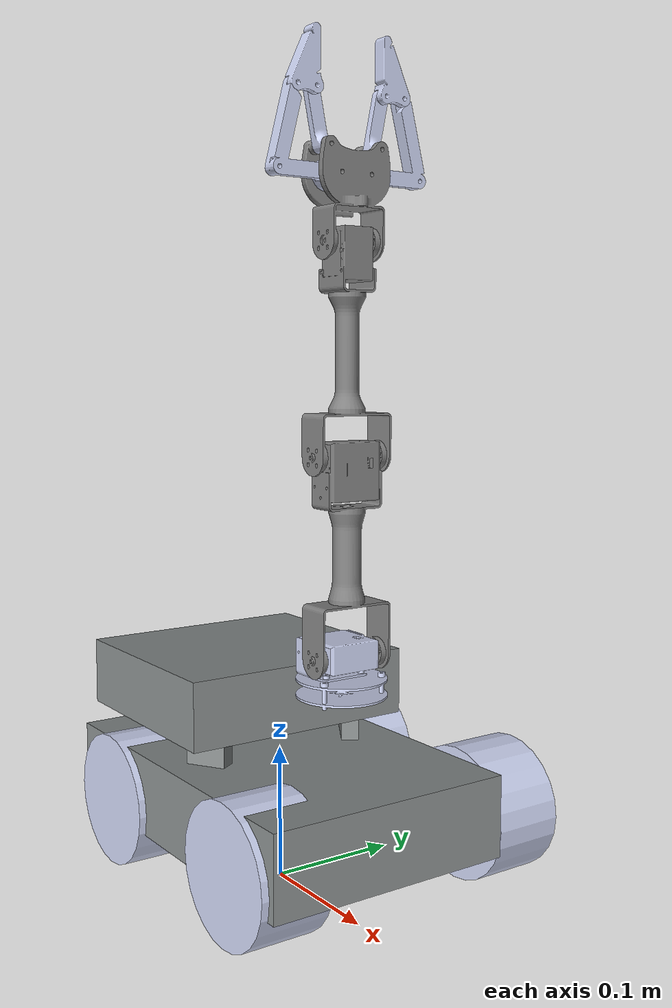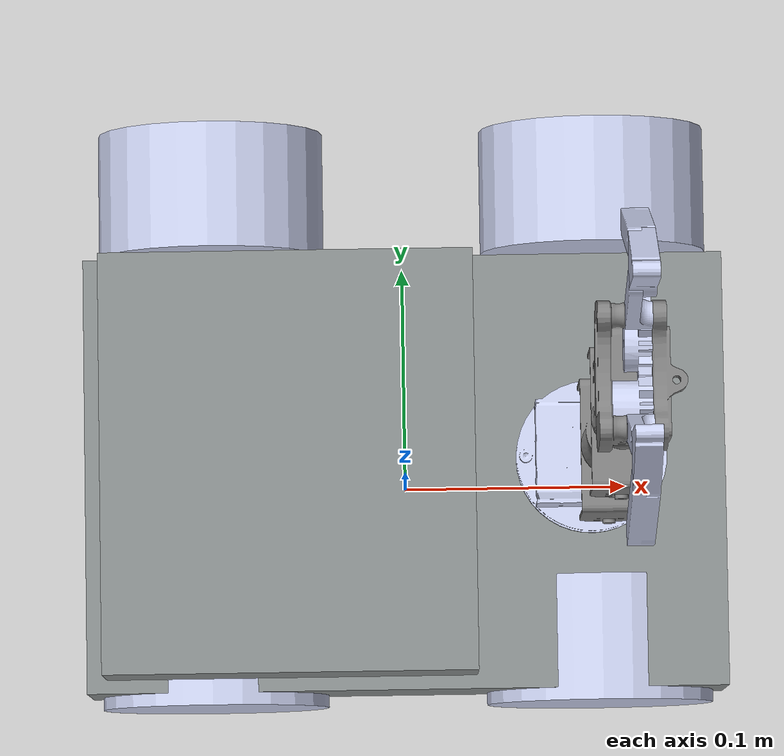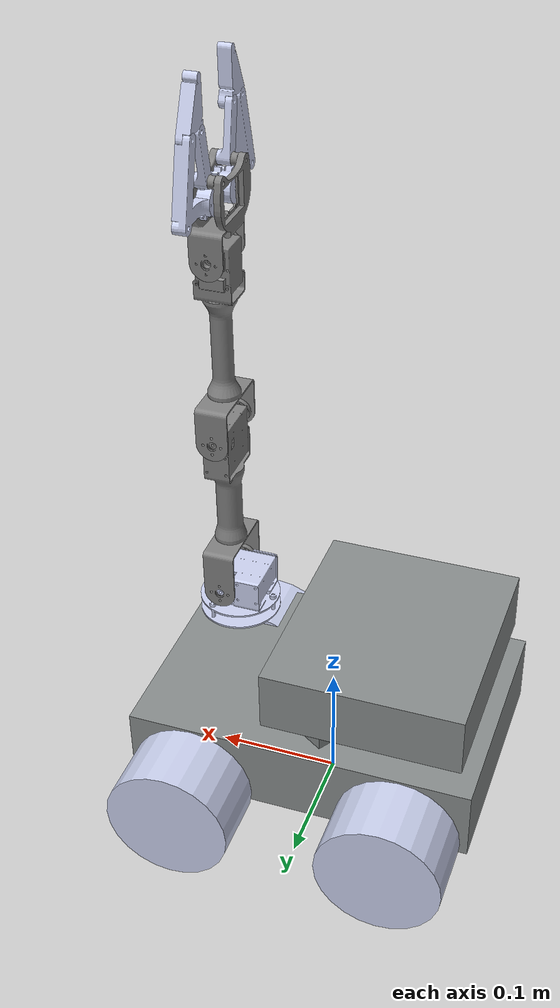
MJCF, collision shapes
<mujoco model="mirte_master">
  <compiler angle="radian" meshdir="./"/>

  <asset>
    <mesh name="frame_link" content_type="model/stl" file="meshes/frame_link.STL"/>
    <mesh name="wheel_left" content_type="model/stl" file="meshes/wheel_left.STL"/>
    <mesh name="wheel_right" content_type="model/stl" file="meshes/wheel_right.STL"/>
    <mesh name="arm_Rot" content_type="model/stl" file="meshes/arm_Rot.STL"/>
    <mesh name="arm_Shoulder" content_type="model/stl" file="meshes/arm_Shoulder.STL"/>
    <mesh name="arm_Elbow" content_type="model/stl" file="meshes/arm_Elbow.STL"/>
    <mesh name="arm_Wrist" content_type="model/stl" file="meshes/arm_Wrist.STL"/>
    <mesh name="Gripper" content_type="model/stl" file="meshes/Gripper.STL"/>
    <mesh name="_gripper_link_r" content_type="model/stl" file="meshes/_gripper_link_r.STL"/>
    <mesh name="gripper_finger_r" content_type="model/stl" file="meshes/gripper_finger_r.STL"/>
    <mesh name="_gripper_link_l" content_type="model/stl" file="meshes/_gripper_link_l.STL"/>
    <mesh name="gripper_finger_l" content_type="model/stl" file="meshes/gripper_finger_l.STL"/>
    <mesh name="_Gripper_r" content_type="model/stl" file="meshes/_Gripper_r.STL"/>
  </asset>

  <worldbody>
    <body name="base_link">
      <body name="frame_link" pos="0 0 0.1" quat="0.707107 0 0 0.707107">
        <inertial pos="-0.00024285 0.0082178 -0.0437661" quat="0.5 0.5 -0.5 0.5" mass="5" diaginertia="0.0477083 0.0341667 0.0165417"/>
        <geom type="mesh" contype="0" conaffinity="0" group="1" density="0" rgba="0.52941 0.54902 0.54902 1" mesh="frame_link"/>
        <geom size="0.095 0.14 0.03" pos="0 0 -0.03" type="box" rgba="0.52941 0.54902 0.54902 1"/>
        <geom size="0.09 0.08 0.025" pos="0 0.05 0.045" type="box" rgba="0.52941 0.54902 0.54902 1"/>
        <geom size="0.0065 0.015 0.0125" pos="-0.062156 -0.002558 0.0125" quat="0.96005 0 0 0.279829" type="box" rgba="0.52941 0.54902 0.54902 1"/>
        <geom size="0.0065 0.02 0.0125" pos="0.064835 0.001664 0.0125" quat="0.96005 0 0 -0.279829" type="box" rgba="0.52941 0.54902 0.54902 1"/>
        <body name="front_left_wheel" pos="0.153 -0.085 -0.0455" quat="0.499998 0.5 -0.500002 -0.5">
          <inertial pos="0 0 0.025" quat="0.5 0.5 -0.5 0.5" mass="2.15" diaginertia="0.0026875 0.00188573 0.00188573"/>
          <joint name="front_left_wheel_joint" pos="0 0 0" axis="0 0 -1"/>
          <geom type="mesh" contype="0" conaffinity="0" group="1" density="0" rgba="0.79216 0.81961 0.93333 1" mesh="wheel_left"/>
          <geom size="0.05 0.0275" pos="0 0 0.025" type="cylinder" rgba="0.79216 0.81961 0.93333 1"/>
        </body>
        <body name="rear_left_wheel" pos="0.153 0.085 -0.0455" quat="0.499998 0.5 -0.500002 -0.5">
          <inertial pos="0 0 0.025" quat="0.5 0.5 -0.5 0.5" mass="2.15" diaginertia="0.0026875 0.00188573 0.00188573"/>
          <joint name="rear_left_wheel_joint" pos="0 0 0" axis="0 0 -1"/>
          <geom type="mesh" contype="0" conaffinity="0" group="1" density="0" rgba="0.79216 0.81961 0.93333 1" mesh="wheel_right"/>
          <geom size="0.05 0.0275" pos="0 0 0.025" type="cylinder" rgba="0.79216 0.81961 0.93333 1"/>
        </body>
        <body name="front_right_wheel" pos="-0.098 -0.085 -0.0455" quat="0.499998 0.5 -0.500002 -0.5">
          <inertial pos="0 0 -0.025" quat="0.5 0.5 -0.5 0.5" mass="2.15" diaginertia="0.0026875 0.00188573 0.00188573"/>
          <joint name="front_right_wheel_joint" pos="0 0 0" axis="0 0 -1"/>
          <geom type="mesh" contype="0" conaffinity="0" group="1" density="0" rgba="0.79216 0.81961 0.93333 1" mesh="wheel_right"/>
          <geom size="0.05 0.0275" pos="0 0 -0.025" type="cylinder" rgba="0.79216 0.81961 0.93333 1"/>
        </body>
        <body name="rear_right_wheel" pos="-0.098 0.085 -0.0455" quat="0.499998 0.5 -0.500002 -0.5">
          <inertial pos="0 0 -0.025" quat="0.5 0.5 -0.5 0.5" mass="2.15" diaginertia="0.0026875 0.00188573 0.00188573"/>
          <joint name="rear_right_wheel_joint" pos="0 0 0" axis="0 0 -1"/>
          <geom type="mesh" contype="0" conaffinity="0" group="1" density="0" rgba="0.79216 0.81961 0.93333 1" mesh="wheel_left"/>
          <geom size="0.05 0.0275" pos="0 0 -0.025" type="cylinder" rgba="0.79216 0.81961 0.93333 1"/>
        </body>
        <body name="shoulder_pan" pos="0 -0.079274 0.06" quat="-2.59734e-06 -2.59735e-06 0.707108 0.707105">
          <inertial pos="-1.27894e-05 0.0208059 0.0058568" quat="0.518277 0.480617 0.518615 0.481076" mass="0.0689676" diaginertia="2.2479e-05 1.69943e-05 1.10737e-05"/>
          <joint name="shoulder_pan_joint" pos="0 0 0" axis="0 1 0" range="-1.5708 1.5708" actuatorfrcrange="-2 2"/>
          <geom type="mesh" contype="0" conaffinity="0" group="1" density="0" rgba="0.792157 0.819608 0.933333 1" mesh="arm_Rot"/>
          <geom type="mesh" rgba="0.792157 0.819608 0.933333 1" mesh="arm_Rot"/>
          <body name="shoulder_lift" pos="0 0.0281 -0.00625" quat="-2.59734e-06 0.707105 0.707108 -2.59735e-06">
            <inertial pos="0.0764974 0.000442681 -4.9369e-09" quat="0.499648 0.500351 -0.499648 0.500351" mass="0.104616" diaginertia="5.51612e-05 3.85678e-05 2.54245e-05"/>
            <joint name="shoulder_lift_joint" pos="0 0 0" axis="0 1 0" range="-1.5708 1.5708" actuatorfrcrange="-2 2"/>
            <geom type="mesh" contype="0" conaffinity="0" group="1" density="0" rgba="0.501961 0.501961 0.501961 1" mesh="arm_Shoulder"/>
            <geom type="mesh" rgba="0.501961 0.501961 0.501961 1" mesh="arm_Shoulder"/>
            <body name="elbow" pos="0.1378 0 0" quat="-2.59734e-06 -0.707105 -0.707108 -2.59735e-06">
              <inertial pos="0.000768648 0.0642295 -2.34836e-08" quat="0.00158822 0.707105 -0.00158822 0.707105" mass="0.0709796" diaginertia="3.79131e-05 2.45688e-05 2.06491e-05"/>
              <joint name="elbow_joint" pos="0 0 0" axis="1 0 0" range="-1.5708 1.5708" actuatorfrcrange="-2 2"/>
              <geom type="mesh" contype="0" conaffinity="0" group="1" density="0" rgba="0.501961 0.501961 0.501961 1" mesh="arm_Elbow"/>
              <geom type="mesh" rgba="0.501961 0.501961 0.501961 1" mesh="arm_Elbow"/>
              <body name="wrist" pos="-0.00014 0.14265 0" quat="-2.59734e-06 0.707105 0.707108 -2.59735e-06">
                <inertial pos="0.0225315 0.000488093 -2.74406e-06" quat="0.499343 0.497027 -0.502794 0.500818" mass="0.0464804" diaginertia="1.75206e-05 1.36227e-05 7.224e-06"/>
                <joint name="wrist_joint" pos="0 0 0" axis="0 1 0" range="-1.5708 1.5708" actuatorfrcrange="-2 2"/>
                <geom type="mesh" contype="0" conaffinity="0" group="1" density="0" rgba="0.501961 0.501961 0.501961 1" mesh="arm_Wrist"/>
                <geom type="mesh" rgba="0.501961 0.501961 0.501961 1" mesh="arm_Wrist"/>
                <body name="gripper" pos="0.0435 -0.012 0.0045" quat="0.707105 -0.707108 0 0">
                  <inertial pos="0.0128439 0.00467108 -0.0235318" quat="0.678964 0.213594 0.248041 0.657161" mass="0.0109604" diaginertia="2.97082e-06 1.89182e-06 1.23857e-06"/>
                  <joint name="gripper_joint" pos="0 0 0" axis="0 -1 0" range="-0.2 0.25" actuatorfrcrange="-2 2"/>
                  <geom type="mesh" contype="0" conaffinity="0" group="1" density="0" rgba="0.792157 0.819608 0.933333 1" mesh="Gripper"/>
                  <geom type="mesh" rgba="0.792157 0.819608 0.933333 1" mesh="Gripper"/>
                </body>
                <body name="_gripper_link_r" pos="0.0605 0.0205 -0.0055" quat="0.548913 0.548915 -0.445751 -0.445749">
                  <inertial pos="-1.28017e-08 0.00327807 -0.015629" quat="0.706717 -0.023462 0.023462 0.706717" mass="0.00257857" diaginertia="4.87507e-07 4.78056e-07 3.22876e-08"/>
                  <joint name="_gripper_link_joint_r" pos="0 0 0" axis="0 -1 0" range="-3.14 3.14"/>
                  <geom type="mesh" contype="0" conaffinity="0" group="1" density="0" rgba="0.792157 0.819608 0.933333 1" mesh="_gripper_link_r"/>
                  <geom type="mesh" rgba="0.792157 0.819608 0.933333 1" mesh="_gripper_link_r"/>
                  <body name="gripper_finger_r" pos="0 0.01 -0.037" quat="-3.65361e-06 -0.103151 -3.78895e-07 0.994666">
                    <inertial pos="0.00535822 0.00456986 -0.0146659" quat="0.689125 0.108119 0.065246 0.713554" mass="0.00531206" diaginertia="7.69361e-07 6.87316e-07 1.64486e-07"/>
                    <geom type="mesh" contype="0" conaffinity="0" group="1" density="0" rgba="0.792157 0.819608 0.933333 1" mesh="gripper_finger_r"/>
                    <geom type="mesh" rgba="0.792157 0.819608 0.933333 1" mesh="gripper_finger_r"/>
                  </body>
                </body>
                <body name="_gripper_link_l" pos="0.0605 -0.0205 -0.0055" quat="0.445747 0.445749 -0.548917 -0.548915">
                  <inertial pos="-2.05686e-09 0.00327805 -0.015629" quat="0.706717 -0.0234621 0.0234621 0.706717" mass="0.00257858" diaginertia="4.87507e-07 4.78056e-07 3.22876e-08"/>
                  <joint name="_gripper_link_joint_l" pos="0 0 0" axis="0 -1 0" range="-3.14 3.14"/>
                  <geom type="mesh" contype="0" conaffinity="0" group="1" density="0" rgba="0.792157 0.819608 0.933333 1" mesh="_gripper_link_l"/>
                  <geom type="mesh" rgba="0.792157 0.819608 0.933333 1" mesh="_gripper_link_l"/>
                  <body name="gripper_finger_l" pos="0 0 -0.037" quat="0.994666 0 0.103151 0">
                    <inertial pos="0.00535821 0.00543015 -0.0146658" quat="0.713554 0.065246 0.108119 0.689125" mass="0.00531206" diaginertia="7.69361e-07 6.87316e-07 1.64486e-07"/>
                    <geom type="mesh" contype="0" conaffinity="0" group="1" density="0" rgba="0.792157 0.819608 0.933333 1" mesh="gripper_finger_l"/>
                    <geom type="mesh" rgba="0.792157 0.819608 0.933333 1" mesh="gripper_finger_l"/>
                  </body>
                </body>
                <body name="_Gripper_r" pos="0.0435 0.012 0.0045" quat="-2.59734e-06 2.59735e-06 0.707108 -0.707105">
                  <inertial pos="-0.011059 0.00572379 -0.0203029" quat="0.65568 -0.234345 -0.156465 0.700489" mass="0.0127577" diaginertia="3.21607e-06 2.11596e-06 1.41631e-06"/>
                  <joint name="_Gripper_joint_r" pos="0 0 0" axis="0 -1 0" range="-0.25 0.2" actuatorfrcrange="-2 2"/>
                  <geom type="mesh" contype="0" conaffinity="0" group="1" density="0" rgba="0.792157 0.819608 0.933333 1" mesh="_Gripper_r"/>
                  <geom type="mesh" rgba="0.792157 0.819608 0.933333 1" mesh="_Gripper_r"/>
                </body>
              </body>
            </body>
          </body>
        </body>
      </body>
    </body>
  </worldbody>
</mujoco>
